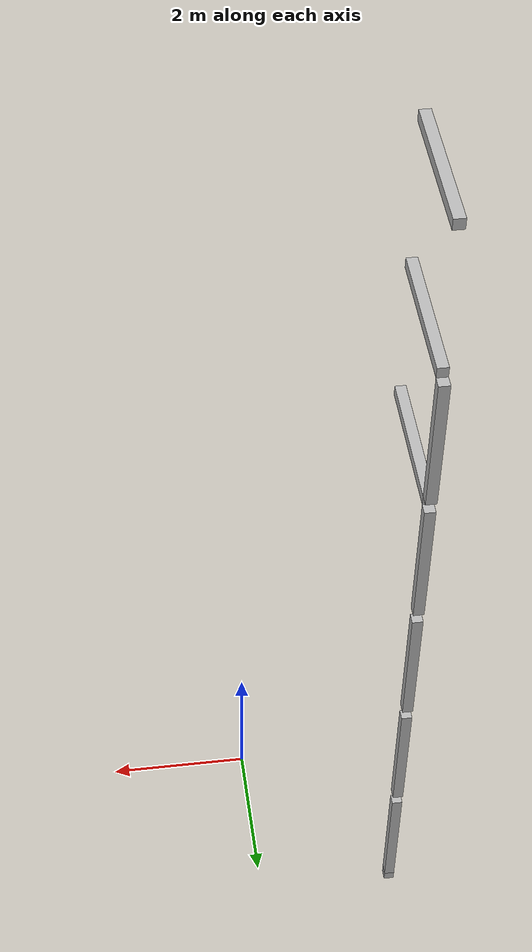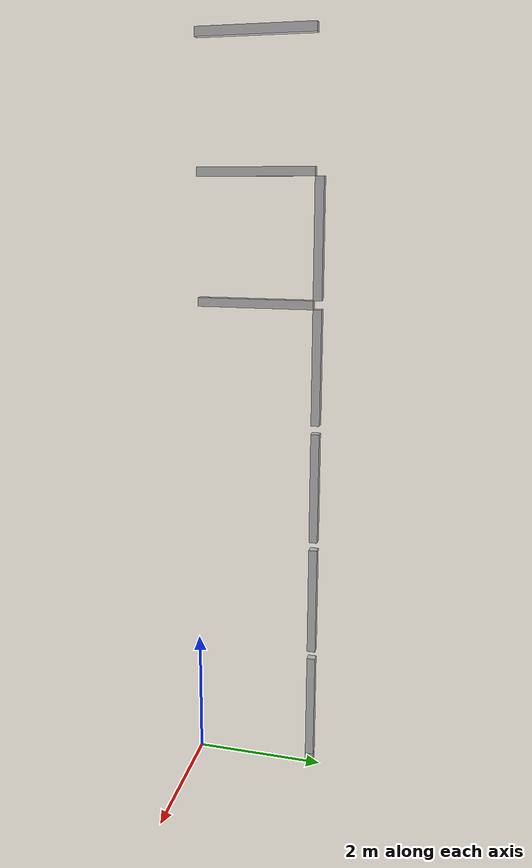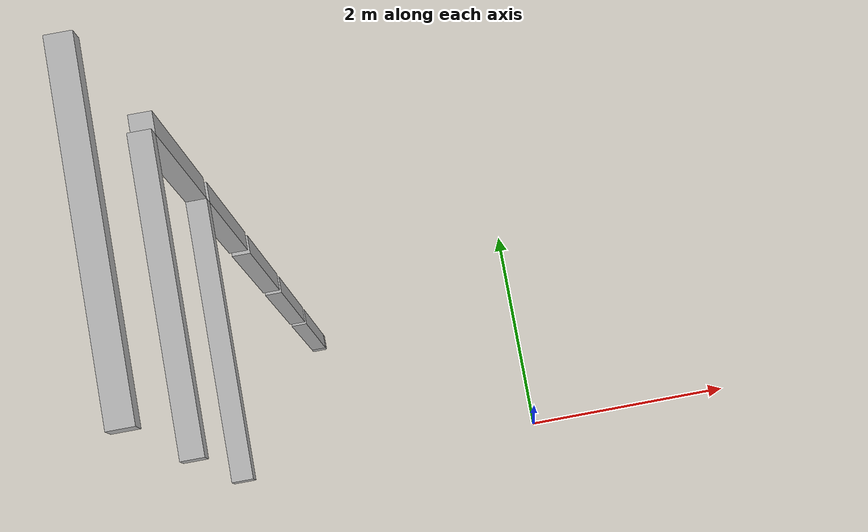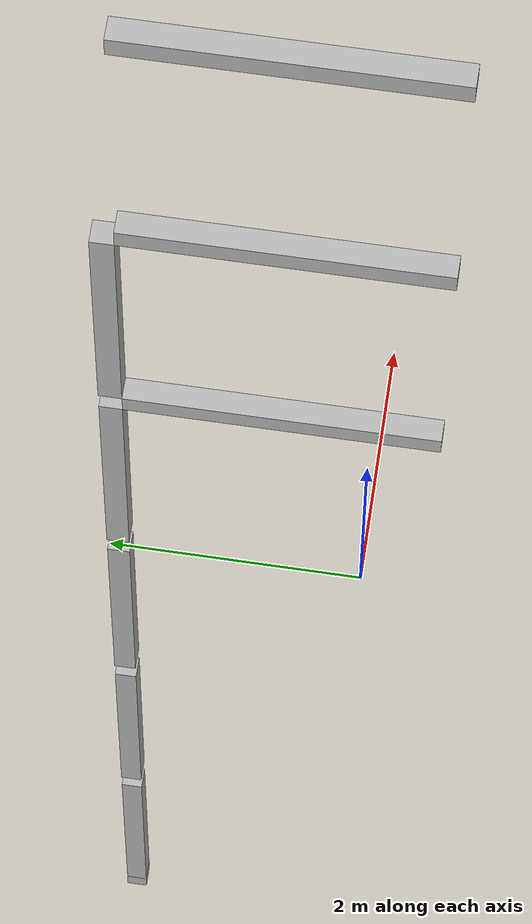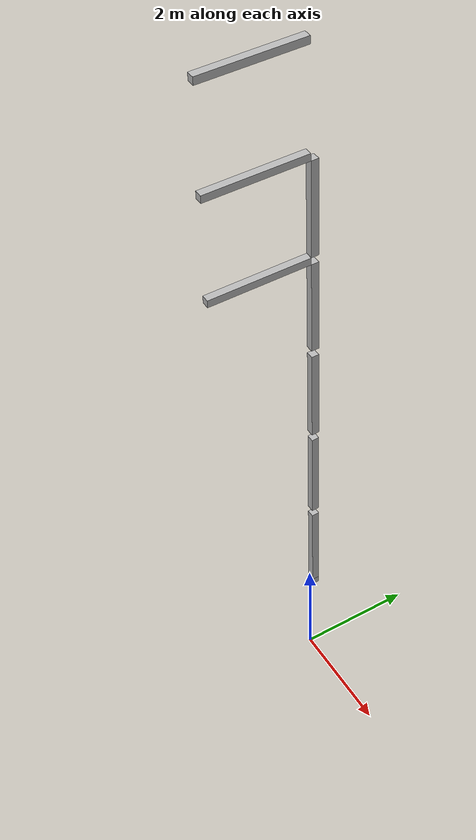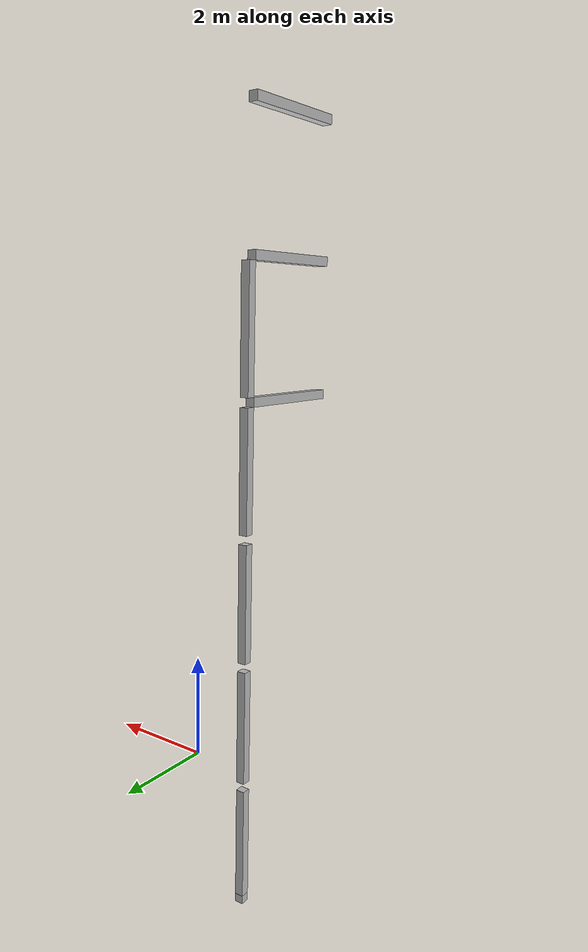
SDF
<sdf version="1.7">
 <world name="default">
  <model name="orthogonal_747_2.000.15_TS">
   <static>1</static>
   <link name="u_link_0_3_2">
    <inertial>
     <mass>1</mass>
     <inertia>
      <ixx>0.166667</ixx>
      <ixy>0</ixy>
      <ixz>0</ixz>
      <iyy>0.166667</iyy>
      <iyz>0</iyz>
      <izz>0.166667</izz>
     </inertia>
    </inertial>
    <pose>4.3 6.45 1.075 0 -0 0</pose>
    <visual name="visual_0">
     <laser_retro>540</laser_retro>
     <geometry><box><size>0.15 1e-06 0.15</size></box></geometry>
     <material>
      <script><name>Gazebo/Grey</name><uri>file://media/materials/scripts/gazebo.material</uri></script>
      <shader type="pixel"><normal_map>__default__</normal_map></shader>
      <ambient>0.678 0.498 0.659 1</ambient>
      <diffuse>0.7 0.7 0.7 1</diffuse>
      <specular>0.01 0.01 0.01 1</specular>
      <emissive>0 0 0 1</emissive>
     </material>
     <pose>0 -0.075 0 0 -0 0</pose>
     <transparency>1</transparency>
    </visual>
    <visual name="visual_1">
     <laser_retro>541</laser_retro>
     <geometry><box><size>0.15 1e-06 0.15</size></box></geometry>
     <material>
      <script><name>Gazebo/Grey</name><uri>file://media/materials/scripts/gazebo.material</uri></script>
      <shader type="pixel"><normal_map>__default__</normal_map></shader>
      <ambient>0.447 0.624 0.812 1</ambient>
      <diffuse>0.7 0.7 0.7 1</diffuse>
      <specular>0.01 0.01 0.01 1</specular>
      <emissive>0 0 0 1</emissive>
     </material>
     <pose>0 0.075 0 0 -0 0</pose>
     <transparency>1</transparency>
    </visual>
    <visual name="visual_2">
     <laser_retro>542</laser_retro>
     <geometry><box><size>0.15 0.15 1e-06</size></box></geometry>
     <material>
      <script><name>Gazebo/Grey</name><uri>file://media/materials/scripts/gazebo.material</uri></script>
      <shader type="pixel"><normal_map>__default__</normal_map></shader>
      <ambient>0.988 0.686 0.243 1</ambient>
      <diffuse>0.7 0.7 0.7 1</diffuse>
      <specular>0.01 0.01 0.01 1</specular>
      <emissive>0 0 0 1</emissive>
     </material>
     <pose>0 0 -0.075 0 -0 0</pose>
     <transparency>1</transparency>
    </visual>
    <visual name="visual_3">
     <laser_retro>543</laser_retro>
     <geometry><box><size>1e-06 0.15 0.15</size></box></geometry>
     <material>
      <script><name>Gazebo/Grey</name><uri>file://media/materials/scripts/gazebo.material</uri></script>
      <shader type="pixel"><normal_map>__default__</normal_map></shader>
      <ambient>0.988 0.914 0.31 1</ambient>
      <diffuse>0.7 0.7 0.7 1</diffuse>
      <specular>0.01 0.01 0.01 1</specular>
      <emissive>0 0 0 1</emissive>
     </material>
     <pose>0.075 0 0 0 -0 0</pose>
     <transparency>1</transparency>
    </visual>
    <visual name="visual_4">
     <laser_retro>544</laser_retro>
     <geometry><box><size>0.15 0.15 1e-06</size></box></geometry>
     <material>
      <script><name>Gazebo/Grey</name><uri>file://media/materials/scripts/gazebo.material</uri></script>
      <shader type="pixel"><normal_map>__default__</normal_map></shader>
      <ambient>0.937 0.161 0.161 1</ambient>
      <diffuse>0.7 0.7 0.7 1</diffuse>
      <specular>0.01 0.01 0.01 1</specular>
      <emissive>0 0 0 1</emissive>
     </material>
     <pose>0 0 0.075 0 -0 0</pose>
     <transparency>1</transparency>
    </visual>
    <visual name="visual_5">
     <laser_retro>545</laser_retro>
     <geometry><box><size>1e-06 0.15 0.15</size></box></geometry>
     <material>
      <script><name>Gazebo/Grey</name><uri>file://media/materials/scripts/gazebo.material</uri></script>
      <shader type="pixel"><normal_map>__default__</normal_map></shader>
      <ambient>0.541 0.886 0.204 1</ambient>
      <diffuse>0.7 0.7 0.7 1</diffuse>
      <specular>0.01 0.01 0.01 1</specular>
      <emissive>0 0 0 1</emissive>
     </material>
     <pose>-0.075 0 0 0 -0 0</pose>
     <transparency>1</transparency>
    </visual>
    <visual name="visual_texture">
     <geometry><box><size>0.149985 0.149985 0.149985</size></box></geometry>
     <material>
      <script>
       <uri>model://BASE_MODELS/simple_block_v2_textured/materials/scripts</uri>
       <uri>model://BASE_MODELS/simple_block_v2_textured/materials/textures</uri>
       <name>metal</name>
      </script>
     </material>
     <laser_retro>546</laser_retro>
    </visual>
    <collision name="collision">
     <geometry><box><size>0.15 0.15 0.15</size></box></geometry>
     <surface>
      <friction>
       <ode><mu>1</mu><mu2>1</mu2><fdir1>0 0 0</fdir1><slip1>0</slip1><slip2>0</slip2></ode>
       <torsional>
        <coefficient>1</coefficient>
        <patch_radius>0</patch_radius>
        <surface_radius>0</surface_radius>
        <use_patch_radius>1</use_patch_radius>
        <ode><slip>0</slip></ode>
       </torsional>
      </friction>
      <bounce><restitution_coefficient>0</restitution_coefficient><threshold>1e+06</threshold></bounce>
      <contact>
       <collide_without_contact>0</collide_without_contact>
       <collide_without_contact_bitmask>1</collide_without_contact_bitmask>
       <collide_bitmask>1</collide_bitmask>
       <ode>
        <soft_cfm>0</soft_cfm>
        <soft_erp>0.2</soft_erp>
        <kp>1e+13</kp>
        <kd>1</kd>
        <max_vel>0.01</max_vel>
        <min_depth>0</min_depth>
       </ode>
       <bullet>
        <split_impulse>1</split_impulse>
        <split_impulse_penetration_threshold>-0.01</split_impulse_penetration_threshold>
        <soft_cfm>0</soft_cfm>
        <soft_erp>0.2</soft_erp>
        <kp>1e+13</kp>
        <kd>1</kd>
       </bullet>
      </contact>
     </surface>
    </collision>
   </link>
   <link name="z_link_1_3_2">
    <inertial>
     <mass>1</mass>
     <inertia>
      <ixx>0.166667</ixx>
      <ixy>0</ixy>
      <ixz>0</ixz>
      <iyy>0.166667</iyy>
      <iyz>0</iyz>
      <izz>0.166667</izz>
     </inertia>
    </inertial>
    <pose>4.3 6.45 2.15 0 -0 0</pose>
    <visual name="visual_0">
     <laser_retro>1380</laser_retro>
     <geometry><box><size>0.15 1e-06 2</size></box></geometry>
     <material>
      <script><name>Gazebo/Grey</name><uri>file://media/materials/scripts/gazebo.material</uri></script>
      <shader type="pixel"><normal_map>__default__</normal_map></shader>
      <ambient>0.678 0.498 0.659 1</ambient>
      <diffuse>0.7 0.7 0.7 1</diffuse>
      <specular>0.01 0.01 0.01 1</specular>
      <emissive>0 0 0 1</emissive>
     </material>
     <pose>0 -0.075 0 0 -0 0</pose>
     <transparency>1</transparency>
    </visual>
    <visual name="visual_1">
     <laser_retro>1381</laser_retro>
     <geometry><box><size>0.15 1e-06 2</size></box></geometry>
     <material>
      <script><name>Gazebo/Grey</name><uri>file://media/materials/scripts/gazebo.material</uri></script>
      <shader type="pixel"><normal_map>__default__</normal_map></shader>
      <ambient>0.447 0.624 0.812 1</ambient>
      <diffuse>0.7 0.7 0.7 1</diffuse>
      <specular>0.01 0.01 0.01 1</specular>
      <emissive>0 0 0 1</emissive>
     </material>
     <pose>0 0.075 0 0 -0 0</pose>
     <transparency>1</transparency>
    </visual>
    <visual name="visual_2">
     <laser_retro>1382</laser_retro>
     <geometry><box><size>0.15 0.15 1e-06</size></box></geometry>
     <material>
      <script><name>Gazebo/Grey</name><uri>file://media/materials/scripts/gazebo.material</uri></script>
      <shader type="pixel"><normal_map>__default__</normal_map></shader>
      <ambient>0.988 0.686 0.243 1</ambient>
      <diffuse>0.7 0.7 0.7 1</diffuse>
      <specular>0.01 0.01 0.01 1</specular>
      <emissive>0 0 0 1</emissive>
     </material>
     <pose>0 0 -1 0 -0 0</pose>
     <transparency>1</transparency>
    </visual>
    <visual name="visual_3">
     <laser_retro>1383</laser_retro>
     <geometry><box><size>1e-06 0.15 2</size></box></geometry>
     <material>
      <script><name>Gazebo/Grey</name><uri>file://media/materials/scripts/gazebo.material</uri></script>
      <shader type="pixel"><normal_map>__default__</normal_map></shader>
      <ambient>0.988 0.914 0.31 1</ambient>
      <diffuse>0.7 0.7 0.7 1</diffuse>
      <specular>0.01 0.01 0.01 1</specular>
      <emissive>0 0 0 1</emissive>
     </material>
     <pose>0.075 0 0 0 -0 0</pose>
     <transparency>1</transparency>
    </visual>
    <visual name="visual_4">
     <laser_retro>1384</laser_retro>
     <geometry><box><size>0.15 0.15 1e-06</size></box></geometry>
     <material>
      <script><name>Gazebo/Grey</name><uri>file://media/materials/scripts/gazebo.material</uri></script>
      <shader type="pixel"><normal_map>__default__</normal_map></shader>
      <ambient>0.937 0.161 0.161 1</ambient>
      <diffuse>0.7 0.7 0.7 1</diffuse>
      <specular>0.01 0.01 0.01 1</specular>
      <emissive>0 0 0 1</emissive>
     </material>
     <pose>0 0 1 0 -0 0</pose>
     <transparency>1</transparency>
    </visual>
    <visual name="visual_5">
     <laser_retro>1385</laser_retro>
     <geometry><box><size>1e-06 0.15 2</size></box></geometry>
     <material>
      <script><name>Gazebo/Grey</name><uri>file://media/materials/scripts/gazebo.material</uri></script>
      <shader type="pixel"><normal_map>__default__</normal_map></shader>
      <ambient>0.541 0.886 0.204 1</ambient>
      <diffuse>0.7 0.7 0.7 1</diffuse>
      <specular>0.01 0.01 0.01 1</specular>
      <emissive>0 0 0 1</emissive>
     </material>
     <pose>-0.075 0 0 0 -0 0</pose>
     <transparency>1</transparency>
    </visual>
    <visual name="visual_texture">
     <geometry><box><size>0.149985 0.149985 1.9998</size></box></geometry>
     <material>
      <script>
       <uri>model://BASE_MODELS/simple_block_v2_textured/materials/scripts</uri>
       <uri>model://BASE_MODELS/simple_block_v2_textured/materials/textures</uri>
       <name>metal</name>
      </script>
     </material>
     <laser_retro>1386</laser_retro>
    </visual>
    <collision name="collision">
     <geometry><box><size>0.15 0.15 2</size></box></geometry>
     <surface>
      <friction>
       <ode><mu>1</mu><mu2>1</mu2><fdir1>0 0 0</fdir1><slip1>0</slip1><slip2>0</slip2></ode>
       <torsional>
        <coefficient>1</coefficient>
        <patch_radius>0</patch_radius>
        <surface_radius>0</surface_radius>
        <use_patch_radius>1</use_patch_radius>
        <ode><slip>0</slip></ode>
       </torsional>
      </friction>
      <bounce><restitution_coefficient>0</restitution_coefficient><threshold>1e+06</threshold></bounce>
      <contact>
       <collide_without_contact>0</collide_without_contact>
       <collide_without_contact_bitmask>1</collide_without_contact_bitmask>
       <collide_bitmask>1</collide_bitmask>
       <ode>
        <soft_cfm>0</soft_cfm>
        <soft_erp>0.2</soft_erp>
        <kp>1e+13</kp>
        <kd>1</kd>
        <max_vel>0.01</max_vel>
        <min_depth>0</min_depth>
       </ode>
       <bullet>
        <split_impulse>1</split_impulse>
        <split_impulse_penetration_threshold>-0.01</split_impulse_penetration_threshold>
        <soft_cfm>0</soft_cfm>
        <soft_erp>0.2</soft_erp>
        <kp>1e+13</kp>
        <kd>1</kd>
       </bullet>
      </contact>
     </surface>
    </collision>
   </link>
   <link name="z_link_2_3_2">
    <inertial>
     <mass>1</mass>
     <inertia>
      <ixx>0.166667</ixx>
      <ixy>0</ixy>
      <ixz>0</ixz>
      <iyy>0.166667</iyy>
      <iyz>0</iyz>
      <izz>0.166667</izz>
     </inertia>
    </inertial>
    <pose>4.3 6.45 4.3 0 -0 0</pose>
    <visual name="visual_0">
     <laser_retro>2283</laser_retro>
     <geometry><box><size>0.15 1e-06 2</size></box></geometry>
     <material>
      <script><name>Gazebo/Grey</name><uri>file://media/materials/scripts/gazebo.material</uri></script>
      <shader type="pixel"><normal_map>__default__</normal_map></shader>
      <ambient>0.678 0.498 0.659 1</ambient>
      <diffuse>0.7 0.7 0.7 1</diffuse>
      <specular>0.01 0.01 0.01 1</specular>
      <emissive>0 0 0 1</emissive>
     </material>
     <pose>0 -0.075 0 0 -0 0</pose>
     <transparency>1</transparency>
    </visual>
    <visual name="visual_1">
     <laser_retro>2284</laser_retro>
     <geometry><box><size>0.15 1e-06 2</size></box></geometry>
     <material>
      <script><name>Gazebo/Grey</name><uri>file://media/materials/scripts/gazebo.material</uri></script>
      <shader type="pixel"><normal_map>__default__</normal_map></shader>
      <ambient>0.447 0.624 0.812 1</ambient>
      <diffuse>0.7 0.7 0.7 1</diffuse>
      <specular>0.01 0.01 0.01 1</specular>
      <emissive>0 0 0 1</emissive>
     </material>
     <pose>0 0.075 0 0 -0 0</pose>
     <transparency>1</transparency>
    </visual>
    <visual name="visual_2">
     <laser_retro>2285</laser_retro>
     <geometry><box><size>0.15 0.15 1e-06</size></box></geometry>
     <material>
      <script><name>Gazebo/Grey</name><uri>file://media/materials/scripts/gazebo.material</uri></script>
      <shader type="pixel"><normal_map>__default__</normal_map></shader>
      <ambient>0.988 0.686 0.243 1</ambient>
      <diffuse>0.7 0.7 0.7 1</diffuse>
      <specular>0.01 0.01 0.01 1</specular>
      <emissive>0 0 0 1</emissive>
     </material>
     <pose>0 0 -1 0 -0 0</pose>
     <transparency>1</transparency>
    </visual>
    <visual name="visual_3">
     <laser_retro>2286</laser_retro>
     <geometry><box><size>1e-06 0.15 2</size></box></geometry>
     <material>
      <script><name>Gazebo/Grey</name><uri>file://media/materials/scripts/gazebo.material</uri></script>
      <shader type="pixel"><normal_map>__default__</normal_map></shader>
      <ambient>0.988 0.914 0.31 1</ambient>
      <diffuse>0.7 0.7 0.7 1</diffuse>
      <specular>0.01 0.01 0.01 1</specular>
      <emissive>0 0 0 1</emissive>
     </material>
     <pose>0.075 0 0 0 -0 0</pose>
     <transparency>1</transparency>
    </visual>
    <visual name="visual_4">
     <laser_retro>2287</laser_retro>
     <geometry><box><size>0.15 0.15 1e-06</size></box></geometry>
     <material>
      <script><name>Gazebo/Grey</name><uri>file://media/materials/scripts/gazebo.material</uri></script>
      <shader type="pixel"><normal_map>__default__</normal_map></shader>
      <ambient>0.937 0.161 0.161 1</ambient>
      <diffuse>0.7 0.7 0.7 1</diffuse>
      <specular>0.01 0.01 0.01 1</specular>
      <emissive>0 0 0 1</emissive>
     </material>
     <pose>0 0 1 0 -0 0</pose>
     <transparency>1</transparency>
    </visual>
    <visual name="visual_5">
     <laser_retro>2288</laser_retro>
     <geometry><box><size>1e-06 0.15 2</size></box></geometry>
     <material>
      <script><name>Gazebo/Grey</name><uri>file://media/materials/scripts/gazebo.material</uri></script>
      <shader type="pixel"><normal_map>__default__</normal_map></shader>
      <ambient>0.541 0.886 0.204 1</ambient>
      <diffuse>0.7 0.7 0.7 1</diffuse>
      <specular>0.01 0.01 0.01 1</specular>
      <emissive>0 0 0 1</emissive>
     </material>
     <pose>-0.075 0 0 0 -0 0</pose>
     <transparency>1</transparency>
    </visual>
    <visual name="visual_texture">
     <geometry><box><size>0.149985 0.149985 1.9998</size></box></geometry>
     <material>
      <script>
       <uri>model://BASE_MODELS/simple_block_v2_textured/materials/scripts</uri>
       <uri>model://BASE_MODELS/simple_block_v2_textured/materials/textures</uri>
       <name>metal</name>
      </script>
     </material>
     <laser_retro>2289</laser_retro>
    </visual>
    <collision name="collision">
     <geometry><box><size>0.15 0.15 2</size></box></geometry>
     <surface>
      <friction>
       <ode><mu>1</mu><mu2>1</mu2><fdir1>0 0 0</fdir1><slip1>0</slip1><slip2>0</slip2></ode>
       <torsional>
        <coefficient>1</coefficient>
        <patch_radius>0</patch_radius>
        <surface_radius>0</surface_radius>
        <use_patch_radius>1</use_patch_radius>
        <ode><slip>0</slip></ode>
       </torsional>
      </friction>
      <bounce><restitution_coefficient>0</restitution_coefficient><threshold>1e+06</threshold></bounce>
      <contact>
       <collide_without_contact>0</collide_without_contact>
       <collide_without_contact_bitmask>1</collide_without_contact_bitmask>
       <collide_bitmask>1</collide_bitmask>
       <ode>
        <soft_cfm>0</soft_cfm>
        <soft_erp>0.2</soft_erp>
        <kp>1e+13</kp>
        <kd>1</kd>
        <max_vel>0.01</max_vel>
        <min_depth>0</min_depth>
       </ode>
       <bullet>
        <split_impulse>1</split_impulse>
        <split_impulse_penetration_threshold>-0.01</split_impulse_penetration_threshold>
        <soft_cfm>0</soft_cfm>
        <soft_erp>0.2</soft_erp>
        <kp>1e+13</kp>
        <kd>1</kd>
       </bullet>
      </contact>
     </surface>
    </collision>
   </link>
   <link name="z_link_3_3_2">
    <inertial>
     <mass>1</mass>
     <inertia>
      <ixx>0.166667</ixx>
      <ixy>0</ixy>
      <ixz>0</ixz>
      <iyy>0.166667</iyy>
      <iyz>0</iyz>
      <izz>0.166667</izz>
     </inertia>
    </inertial>
    <pose>4.3 6.45 6.45 0 -0 0</pose>
    <visual name="visual_0">
     <laser_retro>3186</laser_retro>
     <geometry><box><size>0.15 1e-06 2</size></box></geometry>
     <material>
      <script><name>Gazebo/Grey</name><uri>file://media/materials/scripts/gazebo.material</uri></script>
      <shader type="pixel"><normal_map>__default__</normal_map></shader>
      <ambient>0.678 0.498 0.659 1</ambient>
      <diffuse>0.7 0.7 0.7 1</diffuse>
      <specular>0.01 0.01 0.01 1</specular>
      <emissive>0 0 0 1</emissive>
     </material>
     <pose>0 -0.075 0 0 -0 0</pose>
     <transparency>1</transparency>
    </visual>
    <visual name="visual_1">
     <laser_retro>3187</laser_retro>
     <geometry><box><size>0.15 1e-06 2</size></box></geometry>
     <material>
      <script><name>Gazebo/Grey</name><uri>file://media/materials/scripts/gazebo.material</uri></script>
      <shader type="pixel"><normal_map>__default__</normal_map></shader>
      <ambient>0.447 0.624 0.812 1</ambient>
      <diffuse>0.7 0.7 0.7 1</diffuse>
      <specular>0.01 0.01 0.01 1</specular>
      <emissive>0 0 0 1</emissive>
     </material>
     <pose>0 0.075 0 0 -0 0</pose>
     <transparency>1</transparency>
    </visual>
    <visual name="visual_2">
     <laser_retro>3188</laser_retro>
     <geometry><box><size>0.15 0.15 1e-06</size></box></geometry>
     <material>
      <script><name>Gazebo/Grey</name><uri>file://media/materials/scripts/gazebo.material</uri></script>
      <shader type="pixel"><normal_map>__default__</normal_map></shader>
      <ambient>0.988 0.686 0.243 1</ambient>
      <diffuse>0.7 0.7 0.7 1</diffuse>
      <specular>0.01 0.01 0.01 1</specular>
      <emissive>0 0 0 1</emissive>
     </material>
     <pose>0 0 -1 0 -0 0</pose>
     <transparency>1</transparency>
    </visual>
    <visual name="visual_3">
     <laser_retro>3189</laser_retro>
     <geometry><box><size>1e-06 0.15 2</size></box></geometry>
     <material>
      <script><name>Gazebo/Grey</name><uri>file://media/materials/scripts/gazebo.material</uri></script>
      <shader type="pixel"><normal_map>__default__</normal_map></shader>
      <ambient>0.988 0.914 0.31 1</ambient>
      <diffuse>0.7 0.7 0.7 1</diffuse>
      <specular>0.01 0.01 0.01 1</specular>
      <emissive>0 0 0 1</emissive>
     </material>
     <pose>0.075 0 0 0 -0 0</pose>
     <transparency>1</transparency>
    </visual>
    <visual name="visual_4">
     <laser_retro>3190</laser_retro>
     <geometry><box><size>0.15 0.15 1e-06</size></box></geometry>
     <material>
      <script><name>Gazebo/Grey</name><uri>file://media/materials/scripts/gazebo.material</uri></script>
      <shader type="pixel"><normal_map>__default__</normal_map></shader>
      <ambient>0.937 0.161 0.161 1</ambient>
      <diffuse>0.7 0.7 0.7 1</diffuse>
      <specular>0.01 0.01 0.01 1</specular>
      <emissive>0 0 0 1</emissive>
     </material>
     <pose>0 0 1 0 -0 0</pose>
     <transparency>1</transparency>
    </visual>
    <visual name="visual_5">
     <laser_retro>3191</laser_retro>
     <geometry><box><size>1e-06 0.15 2</size></box></geometry>
     <material>
      <script><name>Gazebo/Grey</name><uri>file://media/materials/scripts/gazebo.material</uri></script>
      <shader type="pixel"><normal_map>__default__</normal_map></shader>
      <ambient>0.541 0.886 0.204 1</ambient>
      <diffuse>0.7 0.7 0.7 1</diffuse>
      <specular>0.01 0.01 0.01 1</specular>
      <emissive>0 0 0 1</emissive>
     </material>
     <pose>-0.075 0 0 0 -0 0</pose>
     <transparency>1</transparency>
    </visual>
    <visual name="visual_texture">
     <geometry><box><size>0.149985 0.149985 1.9998</size></box></geometry>
     <material>
      <script>
       <uri>model://BASE_MODELS/simple_block_v2_textured/materials/scripts</uri>
       <uri>model://BASE_MODELS/simple_block_v2_textured/materials/textures</uri>
       <name>metal</name>
      </script>
     </material>
     <laser_retro>3192</laser_retro>
    </visual>
    <collision name="collision">
     <geometry><box><size>0.15 0.15 2</size></box></geometry>
     <surface>
      <friction>
       <ode><mu>1</mu><mu2>1</mu2><fdir1>0 0 0</fdir1><slip1>0</slip1><slip2>0</slip2></ode>
       <torsional>
        <coefficient>1</coefficient>
        <patch_radius>0</patch_radius>
        <surface_radius>0</surface_radius>
        <use_patch_radius>1</use_patch_radius>
        <ode><slip>0</slip></ode>
       </torsional>
      </friction>
      <bounce><restitution_coefficient>0</restitution_coefficient><threshold>1e+06</threshold></bounce>
      <contact>
       <collide_without_contact>0</collide_without_contact>
       <collide_without_contact_bitmask>1</collide_without_contact_bitmask>
       <collide_bitmask>1</collide_bitmask>
       <ode>
        <soft_cfm>0</soft_cfm>
        <soft_erp>0.2</soft_erp>
        <kp>1e+13</kp>
        <kd>1</kd>
        <max_vel>0.01</max_vel>
        <min_depth>0</min_depth>
       </ode>
       <bullet>
        <split_impulse>1</split_impulse>
        <split_impulse_penetration_threshold>-0.01</split_impulse_penetration_threshold>
        <soft_cfm>0</soft_cfm>
        <soft_erp>0.2</soft_erp>
        <kp>1e+13</kp>
        <kd>1</kd>
       </bullet>
      </contact>
     </surface>
    </collision>
   </link>
   <link name="y_link_4_2_2">
    <inertial>
     <mass>1</mass>
     <inertia>
      <ixx>0.166667</ixx>
      <ixy>0</ixy>
      <ixz>0</ixz>
      <iyy>0.166667</iyy>
      <iyz>0</iyz>
      <izz>0.166667</izz>
     </inertia>
    </inertial>
    <pose>4.3 5.375 9.675 0 -0 0</pose>
    <visual name="visual_0">
     <laser_retro>3907</laser_retro>
     <geometry><box><size>0.15 1e-06 0.15</size></box></geometry>
     <material>
      <script><name>Gazebo/Grey</name><uri>file://media/materials/scripts/gazebo.material</uri></script>
      <shader type="pixel"><normal_map>__default__</normal_map></shader>
      <ambient>0.678 0.498 0.659 1</ambient>
      <diffuse>0.7 0.7 0.7 1</diffuse>
      <specular>0.01 0.01 0.01 1</specular>
      <emissive>0 0 0 1</emissive>
     </material>
     <pose>0 -1 0 0 -0 0</pose>
     <transparency>1</transparency>
    </visual>
    <visual name="visual_1">
     <laser_retro>3908</laser_retro>
     <geometry><box><size>0.15 1e-06 0.15</size></box></geometry>
     <material>
      <script><name>Gazebo/Grey</name><uri>file://media/materials/scripts/gazebo.material</uri></script>
      <shader type="pixel"><normal_map>__default__</normal_map></shader>
      <ambient>0.447 0.624 0.812 1</ambient>
      <diffuse>0.7 0.7 0.7 1</diffuse>
      <specular>0.01 0.01 0.01 1</specular>
      <emissive>0 0 0 1</emissive>
     </material>
     <pose>0 1 0 0 -0 0</pose>
     <transparency>1</transparency>
    </visual>
    <visual name="visual_2">
     <laser_retro>3909</laser_retro>
     <geometry><box><size>0.15 2 1e-06</size></box></geometry>
     <material>
      <script><name>Gazebo/Grey</name><uri>file://media/materials/scripts/gazebo.material</uri></script>
      <shader type="pixel"><normal_map>__default__</normal_map></shader>
      <ambient>0.988 0.686 0.243 1</ambient>
      <diffuse>0.7 0.7 0.7 1</diffuse>
      <specular>0.01 0.01 0.01 1</specular>
      <emissive>0 0 0 1</emissive>
     </material>
     <pose>0 0 -0.075 0 -0 0</pose>
     <transparency>1</transparency>
    </visual>
    <visual name="visual_3">
     <laser_retro>3910</laser_retro>
     <geometry><box><size>1e-06 2 0.15</size></box></geometry>
     <material>
      <script><name>Gazebo/Grey</name><uri>file://media/materials/scripts/gazebo.material</uri></script>
      <shader type="pixel"><normal_map>__default__</normal_map></shader>
      <ambient>0.988 0.914 0.31 1</ambient>
      <diffuse>0.7 0.7 0.7 1</diffuse>
      <specular>0.01 0.01 0.01 1</specular>
      <emissive>0 0 0 1</emissive>
     </material>
     <pose>0.075 0 0 0 -0 0</pose>
     <transparency>1</transparency>
    </visual>
    <visual name="visual_4">
     <laser_retro>3911</laser_retro>
     <geometry><box><size>0.15 2 1e-06</size></box></geometry>
     <material>
      <script><name>Gazebo/Grey</name><uri>file://media/materials/scripts/gazebo.material</uri></script>
      <shader type="pixel"><normal_map>__default__</normal_map></shader>
      <ambient>0.937 0.161 0.161 1</ambient>
      <diffuse>0.7 0.7 0.7 1</diffuse>
      <specular>0.01 0.01 0.01 1</specular>
      <emissive>0 0 0 1</emissive>
     </material>
     <pose>0 0 0.075 0 -0 0</pose>
     <transparency>1</transparency>
    </visual>
    <visual name="visual_5">
     <laser_retro>3912</laser_retro>
     <geometry><box><size>1e-06 2 0.15</size></box></geometry>
     <material>
      <script><name>Gazebo/Grey</name><uri>file://media/materials/scripts/gazebo.material</uri></script>
      <shader type="pixel"><normal_map>__default__</normal_map></shader>
      <ambient>0.541 0.886 0.204 1</ambient>
      <diffuse>0.7 0.7 0.7 1</diffuse>
      <specular>0.01 0.01 0.01 1</specular>
      <emissive>0 0 0 1</emissive>
     </material>
     <pose>-0.075 0 0 0 -0 0</pose>
     <transparency>1</transparency>
    </visual>
    <visual name="visual_texture">
     <geometry><box><size>0.149985 1.9998 0.149985</size></box></geometry>
     <material>
      <script>
       <uri>model://BASE_MODELS/simple_block_v2_textured/materials/scripts</uri>
       <uri>model://BASE_MODELS/simple_block_v2_textured/materials/textures</uri>
       <name>metal</name>
      </script>
     </material>
     <laser_retro>3913</laser_retro>
    </visual>
    <collision name="collision">
     <geometry><box><size>0.15 2 0.15</size></box></geometry>
     <surface>
      <friction>
       <ode><mu>1</mu><mu2>1</mu2><fdir1>0 0 0</fdir1><slip1>0</slip1><slip2>0</slip2></ode>
       <torsional>
        <coefficient>1</coefficient>
        <patch_radius>0</patch_radius>
        <surface_radius>0</surface_radius>
        <use_patch_radius>1</use_patch_radius>
        <ode><slip>0</slip></ode>
       </torsional>
      </friction>
      <bounce><restitution_coefficient>0</restitution_coefficient><threshold>1e+06</threshold></bounce>
      <contact>
       <collide_without_contact>0</collide_without_contact>
       <collide_without_contact_bitmask>1</collide_without_contact_bitmask>
       <collide_bitmask>1</collide_bitmask>
       <ode>
        <soft_cfm>0</soft_cfm>
        <soft_erp>0.2</soft_erp>
        <kp>1e+13</kp>
        <kd>1</kd>
        <max_vel>0.01</max_vel>
        <min_depth>0</min_depth>
       </ode>
       <bullet>
        <split_impulse>1</split_impulse>
        <split_impulse_penetration_threshold>-0.01</split_impulse_penetration_threshold>
        <soft_cfm>0</soft_cfm>
        <soft_erp>0.2</soft_erp>
        <kp>1e+13</kp>
        <kd>1</kd>
       </bullet>
      </contact>
     </surface>
    </collision>
   </link>
   <link name="z_link_4_3_2">
    <inertial>
     <mass>1</mass>
     <inertia>
      <ixx>0.166667</ixx>
      <ixy>0</ixy>
      <ixz>0</ixz>
      <iyy>0.166667</iyy>
      <iyz>0</iyz>
      <izz>0.166667</izz>
     </inertia>
    </inertial>
    <pose>4.3 6.45 8.6 0 -0 0</pose>
    <visual name="visual_0">
     <laser_retro>4089</laser_retro>
     <geometry><box><size>0.15 1e-06 2</size></box></geometry>
     <material>
      <script><name>Gazebo/Grey</name><uri>file://media/materials/scripts/gazebo.material</uri></script>
      <shader type="pixel"><normal_map>__default__</normal_map></shader>
      <ambient>0.678 0.498 0.659 1</ambient>
      <diffuse>0.7 0.7 0.7 1</diffuse>
      <specular>0.01 0.01 0.01 1</specular>
      <emissive>0 0 0 1</emissive>
     </material>
     <pose>0 -0.075 0 0 -0 0</pose>
     <transparency>1</transparency>
    </visual>
    <visual name="visual_1">
     <laser_retro>4090</laser_retro>
     <geometry><box><size>0.15 1e-06 2</size></box></geometry>
     <material>
      <script><name>Gazebo/Grey</name><uri>file://media/materials/scripts/gazebo.material</uri></script>
      <shader type="pixel"><normal_map>__default__</normal_map></shader>
      <ambient>0.447 0.624 0.812 1</ambient>
      <diffuse>0.7 0.7 0.7 1</diffuse>
      <specular>0.01 0.01 0.01 1</specular>
      <emissive>0 0 0 1</emissive>
     </material>
     <pose>0 0.075 0 0 -0 0</pose>
     <transparency>1</transparency>
    </visual>
    <visual name="visual_2">
     <laser_retro>4091</laser_retro>
     <geometry><box><size>0.15 0.15 1e-06</size></box></geometry>
     <material>
      <script><name>Gazebo/Grey</name><uri>file://media/materials/scripts/gazebo.material</uri></script>
      <shader type="pixel"><normal_map>__default__</normal_map></shader>
      <ambient>0.988 0.686 0.243 1</ambient>
      <diffuse>0.7 0.7 0.7 1</diffuse>
      <specular>0.01 0.01 0.01 1</specular>
      <emissive>0 0 0 1</emissive>
     </material>
     <pose>0 0 -1 0 -0 0</pose>
     <transparency>1</transparency>
    </visual>
    <visual name="visual_3">
     <laser_retro>4092</laser_retro>
     <geometry><box><size>1e-06 0.15 2</size></box></geometry>
     <material>
      <script><name>Gazebo/Grey</name><uri>file://media/materials/scripts/gazebo.material</uri></script>
      <shader type="pixel"><normal_map>__default__</normal_map></shader>
      <ambient>0.988 0.914 0.31 1</ambient>
      <diffuse>0.7 0.7 0.7 1</diffuse>
      <specular>0.01 0.01 0.01 1</specular>
      <emissive>0 0 0 1</emissive>
     </material>
     <pose>0.075 0 0 0 -0 0</pose>
     <transparency>1</transparency>
    </visual>
    <visual name="visual_4">
     <laser_retro>4093</laser_retro>
     <geometry><box><size>0.15 0.15 1e-06</size></box></geometry>
     <material>
      <script><name>Gazebo/Grey</name><uri>file://media/materials/scripts/gazebo.material</uri></script>
      <shader type="pixel"><normal_map>__default__</normal_map></shader>
      <ambient>0.937 0.161 0.161 1</ambient>
      <diffuse>0.7 0.7 0.7 1</diffuse>
      <specular>0.01 0.01 0.01 1</specular>
      <emissive>0 0 0 1</emissive>
     </material>
     <pose>0 0 1 0 -0 0</pose>
     <transparency>1</transparency>
    </visual>
    <visual name="visual_5">
     <laser_retro>4094</laser_retro>
     <geometry><box><size>1e-06 0.15 2</size></box></geometry>
     <material>
      <script><name>Gazebo/Grey</name><uri>file://media/materials/scripts/gazebo.material</uri></script>
      <shader type="pixel"><normal_map>__default__</normal_map></shader>
      <ambient>0.541 0.886 0.204 1</ambient>
      <diffuse>0.7 0.7 0.7 1</diffuse>
      <specular>0.01 0.01 0.01 1</specular>
      <emissive>0 0 0 1</emissive>
     </material>
     <pose>-0.075 0 0 0 -0 0</pose>
     <transparency>1</transparency>
    </visual>
    <visual name="visual_texture">
     <geometry><box><size>0.149985 0.149985 1.9998</size></box></geometry>
     <material>
      <script>
       <uri>model://BASE_MODELS/simple_block_v2_textured/materials/scripts</uri>
       <uri>model://BASE_MODELS/simple_block_v2_textured/materials/textures</uri>
       <name>metal</name>
      </script>
     </material>
     <laser_retro>4095</laser_retro>
    </visual>
    <collision name="collision">
     <geometry><box><size>0.15 0.15 2</size></box></geometry>
     <surface>
      <friction>
       <ode><mu>1</mu><mu2>1</mu2><fdir1>0 0 0</fdir1><slip1>0</slip1><slip2>0</slip2></ode>
       <torsional>
        <coefficient>1</coefficient>
        <patch_radius>0</patch_radius>
        <surface_radius>0</surface_radius>
        <use_patch_radius>1</use_patch_radius>
        <ode><slip>0</slip></ode>
       </torsional>
      </friction>
      <bounce><restitution_coefficient>0</restitution_coefficient><threshold>1e+06</threshold></bounce>
      <contact>
       <collide_without_contact>0</collide_without_contact>
       <collide_without_contact_bitmask>1</collide_without_contact_bitmask>
       <collide_bitmask>1</collide_bitmask>
       <ode>
        <soft_cfm>0</soft_cfm>
        <soft_erp>0.2</soft_erp>
        <kp>1e+13</kp>
        <kd>1</kd>
        <max_vel>0.01</max_vel>
        <min_depth>0</min_depth>
       </ode>
       <bullet>
        <split_impulse>1</split_impulse>
        <split_impulse_penetration_threshold>-0.01</split_impulse_penetration_threshold>
        <soft_cfm>0</soft_cfm>
        <soft_erp>0.2</soft_erp>
        <kp>1e+13</kp>
        <kd>1</kd>
       </bullet>
      </contact>
     </surface>
    </collision>
   </link>
   <link name="y_link_5_2_2">
    <inertial>
     <mass>1</mass>
     <inertia>
      <ixx>0.166667</ixx>
      <ixy>0</ixy>
      <ixz>0</ixz>
      <iyy>0.166667</iyy>
      <iyz>0</iyz>
      <izz>0.166667</izz>
     </inertia>
    </inertial>
    <pose>4.3 5.375 11.825 0 -0 0</pose>
    <visual name="visual_0">
     <laser_retro>4810</laser_retro>
     <geometry><box><size>0.15 1e-06 0.15</size></box></geometry>
     <material>
      <script><name>Gazebo/Grey</name><uri>file://media/materials/scripts/gazebo.material</uri></script>
      <shader type="pixel"><normal_map>__default__</normal_map></shader>
      <ambient>0.678 0.498 0.659 1</ambient>
      <diffuse>0.7 0.7 0.7 1</diffuse>
      <specular>0.01 0.01 0.01 1</specular>
      <emissive>0 0 0 1</emissive>
     </material>
     <pose>0 -1 0 0 -0 0</pose>
     <transparency>1</transparency>
    </visual>
    <visual name="visual_1">
     <laser_retro>4811</laser_retro>
     <geometry><box><size>0.15 1e-06 0.15</size></box></geometry>
     <material>
      <script><name>Gazebo/Grey</name><uri>file://media/materials/scripts/gazebo.material</uri></script>
      <shader type="pixel"><normal_map>__default__</normal_map></shader>
      <ambient>0.447 0.624 0.812 1</ambient>
      <diffuse>0.7 0.7 0.7 1</diffuse>
      <specular>0.01 0.01 0.01 1</specular>
      <emissive>0 0 0 1</emissive>
     </material>
     <pose>0 1 0 0 -0 0</pose>
     <transparency>1</transparency>
    </visual>
    <visual name="visual_2">
     <laser_retro>4812</laser_retro>
     <geometry><box><size>0.15 2 1e-06</size></box></geometry>
     <material>
      <script><name>Gazebo/Grey</name><uri>file://media/materials/scripts/gazebo.material</uri></script>
      <shader type="pixel"><normal_map>__default__</normal_map></shader>
      <ambient>0.988 0.686 0.243 1</ambient>
      <diffuse>0.7 0.7 0.7 1</diffuse>
      <specular>0.01 0.01 0.01 1</specular>
      <emissive>0 0 0 1</emissive>
     </material>
     <pose>0 0 -0.075 0 -0 0</pose>
     <transparency>1</transparency>
    </visual>
    <visual name="visual_3">
     <laser_retro>4813</laser_retro>
     <geometry><box><size>1e-06 2 0.15</size></box></geometry>
     <material>
      <script><name>Gazebo/Grey</name><uri>file://media/materials/scripts/gazebo.material</uri></script>
      <shader type="pixel"><normal_map>__default__</normal_map></shader>
      <ambient>0.988 0.914 0.31 1</ambient>
      <diffuse>0.7 0.7 0.7 1</diffuse>
      <specular>0.01 0.01 0.01 1</specular>
      <emissive>0 0 0 1</emissive>
     </material>
     <pose>0.075 0 0 0 -0 0</pose>
     <transparency>1</transparency>
    </visual>
    <visual name="visual_4">
     <laser_retro>4814</laser_retro>
     <geometry><box><size>0.15 2 1e-06</size></box></geometry>
     <material>
      <script><name>Gazebo/Grey</name><uri>file://media/materials/scripts/gazebo.material</uri></script>
      <shader type="pixel"><normal_map>__default__</normal_map></shader>
      <ambient>0.937 0.161 0.161 1</ambient>
      <diffuse>0.7 0.7 0.7 1</diffuse>
      <specular>0.01 0.01 0.01 1</specular>
      <emissive>0 0 0 1</emissive>
     </material>
     <pose>0 0 0.075 0 -0 0</pose>
     <transparency>1</transparency>
    </visual>
    <visual name="visual_5">
     <laser_retro>4815</laser_retro>
     <geometry><box><size>1e-06 2 0.15</size></box></geometry>
     <material>
      <script><name>Gazebo/Grey</name><uri>file://media/materials/scripts/gazebo.material</uri></script>
      <shader type="pixel"><normal_map>__default__</normal_map></shader>
      <ambient>0.541 0.886 0.204 1</ambient>
      <diffuse>0.7 0.7 0.7 1</diffuse>
      <specular>0.01 0.01 0.01 1</specular>
      <emissive>0 0 0 1</emissive>
     </material>
     <pose>-0.075 0 0 0 -0 0</pose>
     <transparency>1</transparency>
    </visual>
    <visual name="visual_texture">
     <geometry><box><size>0.149985 1.9998 0.149985</size></box></geometry>
     <material>
      <script>
       <uri>model://BASE_MODELS/simple_block_v2_textured/materials/scripts</uri>
       <uri>model://BASE_MODELS/simple_block_v2_textured/materials/textures</uri>
       <name>metal</name>
      </script>
     </material>
     <laser_retro>4816</laser_retro>
    </visual>
    <collision name="collision">
     <geometry><box><size>0.15 2 0.15</size></box></geometry>
     <surface>
      <friction>
       <ode><mu>1</mu><mu2>1</mu2><fdir1>0 0 0</fdir1><slip1>0</slip1><slip2>0</slip2></ode>
       <torsional>
        <coefficient>1</coefficient>
        <patch_radius>0</patch_radius>
        <surface_radius>0</surface_radius>
        <use_patch_radius>1</use_patch_radius>
        <ode><slip>0</slip></ode>
       </torsional>
      </friction>
      <bounce><restitution_coefficient>0</restitution_coefficient><threshold>1e+06</threshold></bounce>
      <contact>
       <collide_without_contact>0</collide_without_contact>
       <collide_without_contact_bitmask>1</collide_without_contact_bitmask>
       <collide_bitmask>1</collide_bitmask>
       <ode>
        <soft_cfm>0</soft_cfm>
        <soft_erp>0.2</soft_erp>
        <kp>1e+13</kp>
        <kd>1</kd>
        <max_vel>0.01</max_vel>
        <min_depth>0</min_depth>
       </ode>
       <bullet>
        <split_impulse>1</split_impulse>
        <split_impulse_penetration_threshold>-0.01</split_impulse_penetration_threshold>
        <soft_cfm>0</soft_cfm>
        <soft_erp>0.2</soft_erp>
        <kp>1e+13</kp>
        <kd>1</kd>
       </bullet>
      </contact>
     </surface>
    </collision>
   </link>
   <link name="z_link_5_3_2">
    <inertial>
     <mass>1</mass>
     <inertia>
      <ixx>0.166667</ixx>
      <ixy>0</ixy>
      <ixz>0</ixz>
      <iyy>0.166667</iyy>
      <iyz>0</iyz>
      <izz>0.166667</izz>
     </inertia>
    </inertial>
    <pose>4.3 6.45 10.75 0 -0 0</pose>
    <visual name="visual_0">
     <laser_retro>4992</laser_retro>
     <geometry><box><size>0.15 1e-06 2</size></box></geometry>
     <material>
      <script><name>Gazebo/Grey</name><uri>file://media/materials/scripts/gazebo.material</uri></script>
      <shader type="pixel"><normal_map>__default__</normal_map></shader>
      <ambient>0.678 0.498 0.659 1</ambient>
      <diffuse>0.7 0.7 0.7 1</diffuse>
      <specular>0.01 0.01 0.01 1</specular>
      <emissive>0 0 0 1</emissive>
     </material>
     <pose>0 -0.075 0 0 -0 0</pose>
     <transparency>1</transparency>
    </visual>
    <visual name="visual_1">
     <laser_retro>4993</laser_retro>
     <geometry><box><size>0.15 1e-06 2</size></box></geometry>
     <material>
      <script><name>Gazebo/Grey</name><uri>file://media/materials/scripts/gazebo.material</uri></script>
      <shader type="pixel"><normal_map>__default__</normal_map></shader>
      <ambient>0.447 0.624 0.812 1</ambient>
      <diffuse>0.7 0.7 0.7 1</diffuse>
      <specular>0.01 0.01 0.01 1</specular>
      <emissive>0 0 0 1</emissive>
     </material>
     <pose>0 0.075 0 0 -0 0</pose>
     <transparency>1</transparency>
    </visual>
    <visual name="visual_2">
     <laser_retro>4994</laser_retro>
     <geometry><box><size>0.15 0.15 1e-06</size></box></geometry>
     <material>
      <script><name>Gazebo/Grey</name><uri>file://media/materials/scripts/gazebo.material</uri></script>
      <shader type="pixel"><normal_map>__default__</normal_map></shader>
      <ambient>0.988 0.686 0.243 1</ambient>
      <diffuse>0.7 0.7 0.7 1</diffuse>
      <specular>0.01 0.01 0.01 1</specular>
      <emissive>0 0 0 1</emissive>
     </material>
     <pose>0 0 -1 0 -0 0</pose>
     <transparency>1</transparency>
    </visual>
    <visual name="visual_3">
     <laser_retro>4995</laser_retro>
     <geometry><box><size>1e-06 0.15 2</size></box></geometry>
     <material>
      <script><name>Gazebo/Grey</name><uri>file://media/materials/scripts/gazebo.material</uri></script>
      <shader type="pixel"><normal_map>__default__</normal_map></shader>
      <ambient>0.988 0.914 0.31 1</ambient>
      <diffuse>0.7 0.7 0.7 1</diffuse>
      <specular>0.01 0.01 0.01 1</specular>
      <emissive>0 0 0 1</emissive>
     </material>
     <pose>0.075 0 0 0 -0 0</pose>
     <transparency>1</transparency>
    </visual>
    <visual name="visual_4">
     <laser_retro>4996</laser_retro>
     <geometry><box><size>0.15 0.15 1e-06</size></box></geometry>
     <material>
      <script><name>Gazebo/Grey</name><uri>file://media/materials/scripts/gazebo.material</uri></script>
      <shader type="pixel"><normal_map>__default__</normal_map></shader>
      <ambient>0.937 0.161 0.161 1</ambient>
      <diffuse>0.7 0.7 0.7 1</diffuse>
      <specular>0.01 0.01 0.01 1</specular>
      <emissive>0 0 0 1</emissive>
     </material>
     <pose>0 0 1 0 -0 0</pose>
     <transparency>1</transparency>
    </visual>
    <visual name="visual_5">
     <laser_retro>4997</laser_retro>
     <geometry><box><size>1e-06 0.15 2</size></box></geometry>
     <material>
      <script><name>Gazebo/Grey</name><uri>file://media/materials/scripts/gazebo.material</uri></script>
      <shader type="pixel"><normal_map>__default__</normal_map></shader>
      <ambient>0.541 0.886 0.204 1</ambient>
      <diffuse>0.7 0.7 0.7 1</diffuse>
      <specular>0.01 0.01 0.01 1</specular>
      <emissive>0 0 0 1</emissive>
     </material>
     <pose>-0.075 0 0 0 -0 0</pose>
     <transparency>1</transparency>
    </visual>
    <visual name="visual_texture">
     <geometry><box><size>0.149985 0.149985 1.9998</size></box></geometry>
     <material>
      <script>
       <uri>model://BASE_MODELS/simple_block_v2_textured/materials/scripts</uri>
       <uri>model://BASE_MODELS/simple_block_v2_textured/materials/textures</uri>
       <name>metal</name>
      </script>
     </material>
     <laser_retro>4998</laser_retro>
    </visual>
    <collision name="collision">
     <geometry><box><size>0.15 0.15 2</size></box></geometry>
     <surface>
      <friction>
       <ode><mu>1</mu><mu2>1</mu2><fdir1>0 0 0</fdir1><slip1>0</slip1><slip2>0</slip2></ode>
       <torsional>
        <coefficient>1</coefficient>
        <patch_radius>0</patch_radius>
        <surface_radius>0</surface_radius>
        <use_patch_radius>1</use_patch_radius>
        <ode><slip>0</slip></ode>
       </torsional>
      </friction>
      <bounce><restitution_coefficient>0</restitution_coefficient><threshold>1e+06</threshold></bounce>
      <contact>
       <collide_without_contact>0</collide_without_contact>
       <collide_without_contact_bitmask>1</collide_without_contact_bitmask>
       <collide_bitmask>1</collide_bitmask>
       <ode>
        <soft_cfm>0</soft_cfm>
        <soft_erp>0.2</soft_erp>
        <kp>1e+13</kp>
        <kd>1</kd>
        <max_vel>0.01</max_vel>
        <min_depth>0</min_depth>
       </ode>
       <bullet>
        <split_impulse>1</split_impulse>
        <split_impulse_penetration_threshold>-0.01</split_impulse_penetration_threshold>
        <soft_cfm>0</soft_cfm>
        <soft_erp>0.2</soft_erp>
        <kp>1e+13</kp>
        <kd>1</kd>
       </bullet>
      </contact>
     </surface>
    </collision>
   </link>
   <link name="y_link_6_2_2">
    <inertial>
     <mass>1</mass>
     <inertia>
      <ixx>0.166667</ixx>
      <ixy>0</ixy>
      <ixz>0</ixz>
      <iyy>0.166667</iyy>
      <iyz>0</iyz>
      <izz>0.166667</izz>
     </inertia>
    </inertial>
    <pose>4.3 5.375 13.975 0 -0 0</pose>
    <visual name="visual_0">
     <laser_retro>5762</laser_retro>
     <geometry><box><size>0.15 1e-06 0.15</size></box></geometry>
     <material>
      <script><name>Gazebo/Grey</name><uri>file://media/materials/scripts/gazebo.material</uri></script>
      <shader type="pixel"><normal_map>__default__</normal_map></shader>
      <ambient>0.678 0.498 0.659 1</ambient>
      <diffuse>0.7 0.7 0.7 1</diffuse>
      <specular>0.01 0.01 0.01 1</specular>
      <emissive>0 0 0 1</emissive>
     </material>
     <pose>0 -1 0 0 -0 0</pose>
     <transparency>1</transparency>
    </visual>
    <visual name="visual_1">
     <laser_retro>5763</laser_retro>
     <geometry><box><size>0.15 1e-06 0.15</size></box></geometry>
     <material>
      <script><name>Gazebo/Grey</name><uri>file://media/materials/scripts/gazebo.material</uri></script>
      <shader type="pixel"><normal_map>__default__</normal_map></shader>
      <ambient>0.447 0.624 0.812 1</ambient>
      <diffuse>0.7 0.7 0.7 1</diffuse>
      <specular>0.01 0.01 0.01 1</specular>
      <emissive>0 0 0 1</emissive>
     </material>
     <pose>0 1 0 0 -0 0</pose>
     <transparency>1</transparency>
    </visual>
    <visual name="visual_2">
     <laser_retro>5764</laser_retro>
     <geometry><box><size>0.15 2 1e-06</size></box></geometry>
     <material>
      <script><name>Gazebo/Grey</name><uri>file://media/materials/scripts/gazebo.material</uri></script>
      <shader type="pixel"><normal_map>__default__</normal_map></shader>
      <ambient>0.988 0.686 0.243 1</ambient>
      <diffuse>0.7 0.7 0.7 1</diffuse>
      <specular>0.01 0.01 0.01 1</specular>
      <emissive>0 0 0 1</emissive>
     </material>
     <pose>0 0 -0.075 0 -0 0</pose>
     <transparency>1</transparency>
    </visual>
    <visual name="visual_3">
     <laser_retro>5765</laser_retro>
     <geometry><box><size>1e-06 2 0.15</size></box></geometry>
     <material>
      <script><name>Gazebo/Grey</name><uri>file://media/materials/scripts/gazebo.material</uri></script>
      <shader type="pixel"><normal_map>__default__</normal_map></shader>
      <ambient>0.988 0.914 0.31 1</ambient>
      <diffuse>0.7 0.7 0.7 1</diffuse>
      <specular>0.01 0.01 0.01 1</specular>
      <emissive>0 0 0 1</emissive>
     </material>
     <pose>0.075 0 0 0 -0 0</pose>
     <transparency>1</transparency>
    </visual>
    <visual name="visual_4">
     <laser_retro>5766</laser_retro>
     <geometry><box><size>0.15 2 1e-06</size></box></geometry>
     <material>
      <script><name>Gazebo/Grey</name><uri>file://media/materials/scripts/gazebo.material</uri></script>
      <shader type="pixel"><normal_map>__default__</normal_map></shader>
      <ambient>0.937 0.161 0.161 1</ambient>
      <diffuse>0.7 0.7 0.7 1</diffuse>
      <specular>0.01 0.01 0.01 1</specular>
      <emissive>0 0 0 1</emissive>
     </material>
     <pose>0 0 0.075 0 -0 0</pose>
     <transparency>1</transparency>
    </visual>
    <visual name="visual_5">
     <laser_retro>5767</laser_retro>
     <geometry><box><size>1e-06 2 0.15</size></box></geometry>
     <material>
      <script><name>Gazebo/Grey</name><uri>file://media/materials/scripts/gazebo.material</uri></script>
      <shader type="pixel"><normal_map>__default__</normal_map></shader>
      <ambient>0.541 0.886 0.204 1</ambient>
      <diffuse>0.7 0.7 0.7 1</diffuse>
      <specular>0.01 0.01 0.01 1</specular>
      <emissive>0 0 0 1</emissive>
     </material>
     <pose>-0.075 0 0 0 -0 0</pose>
     <transparency>1</transparency>
    </visual>
    <visual name="visual_texture">
     <geometry><box><size>0.149985 1.9998 0.149985</size></box></geometry>
     <material>
      <script>
       <uri>model://BASE_MODELS/simple_block_v2_textured/materials/scripts</uri>
       <uri>model://BASE_MODELS/simple_block_v2_textured/materials/textures</uri>
       <name>metal</name>
      </script>
     </material>
     <laser_retro>5768</laser_retro>
    </visual>
    <collision name="collision">
     <geometry><box><size>0.15 2 0.15</size></box></geometry>
     <surface>
      <friction>
       <ode><mu>1</mu><mu2>1</mu2><fdir1>0 0 0</fdir1><slip1>0</slip1><slip2>0</slip2></ode>
       <torsional>
        <coefficient>1</coefficient>
        <patch_radius>0</patch_radius>
        <surface_radius>0</surface_radius>
        <use_patch_radius>1</use_patch_radius>
        <ode><slip>0</slip></ode>
       </torsional>
      </friction>
      <bounce><restitution_coefficient>0</restitution_coefficient><threshold>1e+06</threshold></bounce>
      <contact>
       <collide_without_contact>0</collide_without_contact>
       <collide_without_contact_bitmask>1</collide_without_contact_bitmask>
       <collide_bitmask>1</collide_bitmask>
       <ode>
        <soft_cfm>0</soft_cfm>
        <soft_erp>0.2</soft_erp>
        <kp>1e+13</kp>
        <kd>1</kd>
        <max_vel>0.01</max_vel>
        <min_depth>0</min_depth>
       </ode>
       <bullet>
        <split_impulse>1</split_impulse>
        <split_impulse_penetration_threshold>-0.01</split_impulse_penetration_threshold>
        <soft_cfm>0</soft_cfm>
        <soft_erp>0.2</soft_erp>
        <kp>1e+13</kp>
        <kd>1</kd>
       </bullet>
      </contact>
     </surface>
    </collision>
   </link>
   <pose>-6.47624 -5 -2.5 0 -0 0</pose>
  </model>
 </world>
</sdf>
